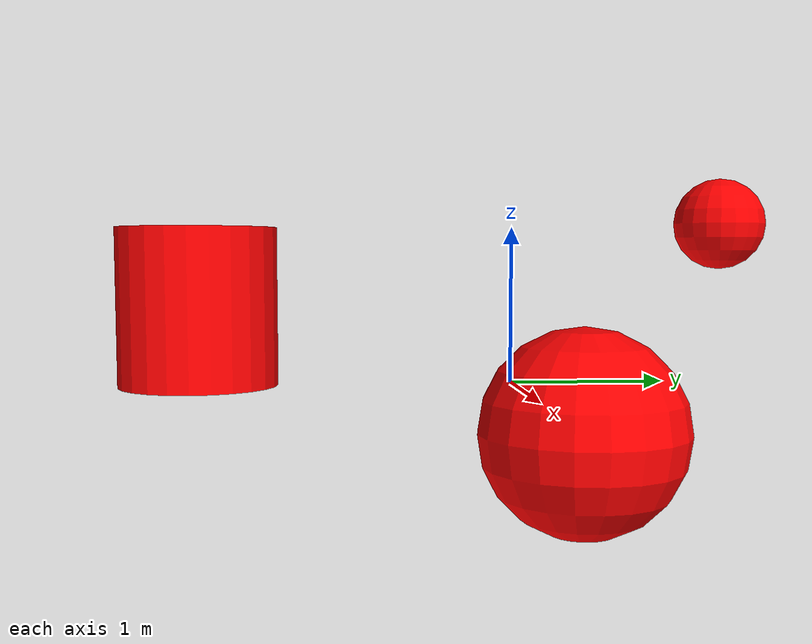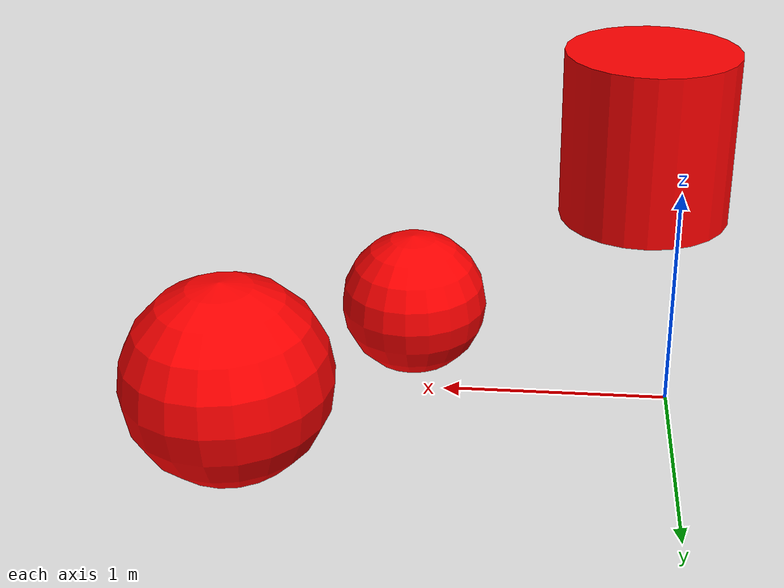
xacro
<?xml version="1.0" encoding="utf-8"?>
<robot name="simple_obstacles" xmlns:xacro="http://wiki.ros.org/xacro">

  <material name="red">
    <color rgba="1.0 0.0 0.0 1.0"/>
  </material>

  <xacro:macro name="obstacle_link" params="name material *geometry">
    <link name="${name}">
        <collision>
          <origin rpy="0 0 0" xyz="0 0 0" />
          <xacro:insert_block name="geometry" />
        </collision>
      <visual>
        <origin rpy="0 0 0" xyz="0 0 0" />
        <xacro:insert_block name="geometry" />
        <material name="${material}"/>
      </visual>
    </link>
  </xacro:macro>

  <link name="obstacle_base_link"/>

  <xacro:obstacle_link name="obstacle_link_1" material="red">
    <geometry>
      <sphere radius="0.5"/>
    </geometry>
  </xacro:obstacle_link>
  <joint name="obstacle_joint_1" type="fixed">
    <origin rpy="0 0 0" xyz="2 0 0"/>
    <parent link="obstacle_base_link"/>
    <child link="obstacle_link_1"/>
  </joint>

  <xacro:obstacle_link name="obstacle_link_2" material="red">
    <geometry>
      <sphere radius="0.25"/>
    </geometry>
  </xacro:obstacle_link>
  <joint name="obstacle_joint_2" type="fixed">
    <origin rpy="0 0 0" xyz="1 1 1"/>
    <parent link="obstacle_base_link"/>
    <child link="obstacle_link_2"/>
  </joint>

  <xacro:obstacle_link name="obstacle_link_3" material="red">
    <geometry>
      <cylinder radius="0.5" length="1."/>
    </geometry>
  </xacro:obstacle_link>
  <joint name="obstacle_joint_3" type="fixed">
    <origin rpy="0 0 0" xyz="0 -2 0.5"/>
    <parent link="obstacle_base_link"/>
    <child link="obstacle_link_3"/>
  </joint>

</robot>
